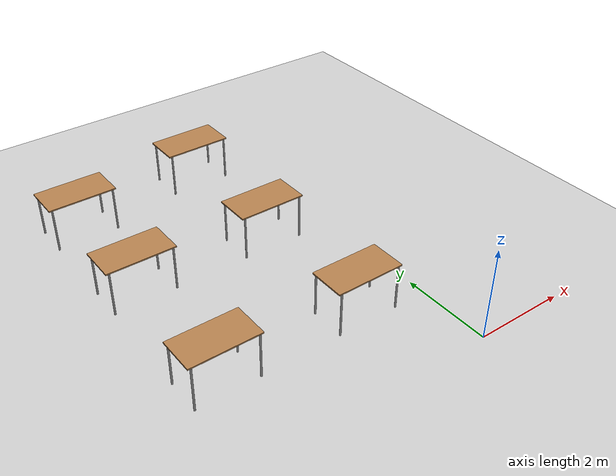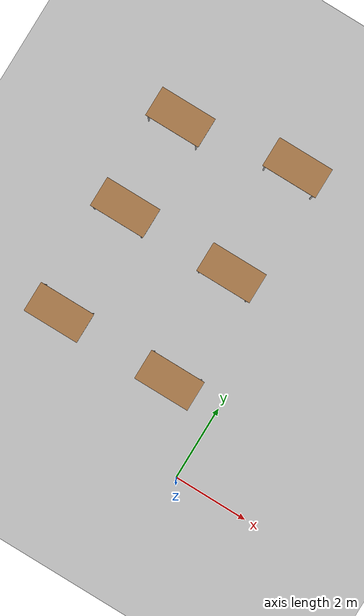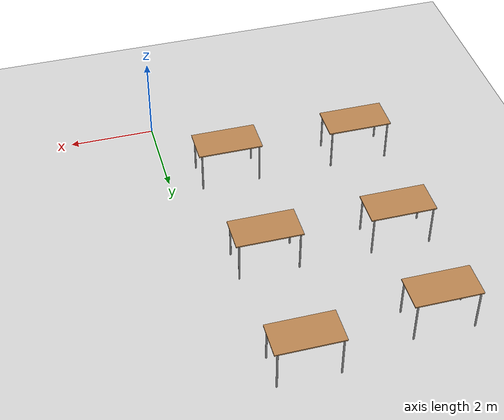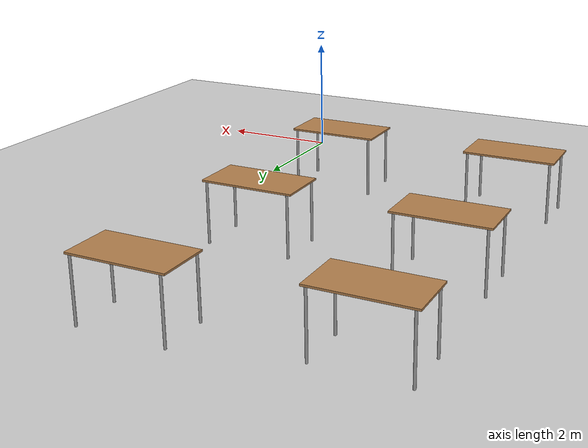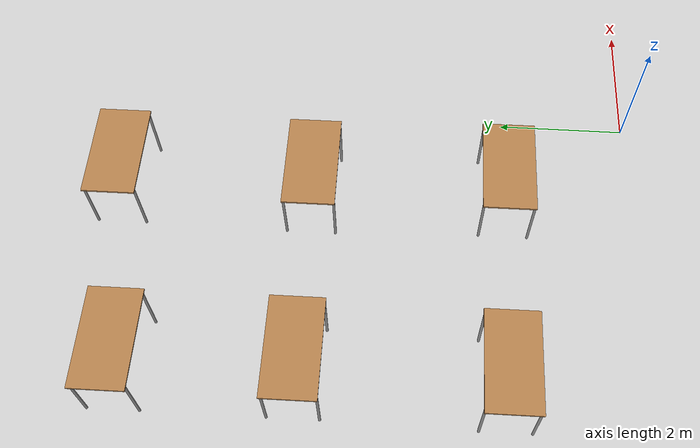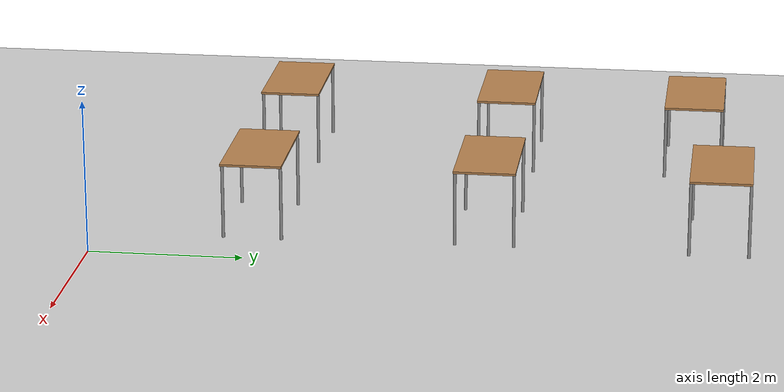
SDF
<sdf version="1.5">
 <world name="default">
  <model name="ground_plane">
   <static>1</static>
   <link name="link">
    <collision name="collision">
     <geometry><plane><normal>0 0 1</normal><size>100 100</size></plane></geometry>
     <surface><friction><ode><mu>100</mu><mu2>50</mu2></ode></friction></surface>
    </collision>
    <visual name="visual">
     <cast_shadows>0</cast_shadows>
     <geometry><plane><normal>0 0 1</normal><size>100 100</size></plane></geometry>
     <material>
      <script><uri>file://media/materials/scripts/gazebo.material</uri><name>Gazebo/Grey</name></script>
     </material>
    </visual>
   </link>
  </model>
  <model name="table">
   <static>1</static>
   <link name="link">
    <collision name="surface">
     <pose>0 0 1 0 -0 0</pose>
     <geometry><box><size>1.5 0.8 0.03</size></box></geometry>
     <surface><friction><ode><mu>0.6</mu><mu2>0.6</mu2></ode></friction></surface>
    </collision>
    <visual name="visual1">
     <pose>0 0 1 0 -0 0</pose>
     <geometry><box><size>1.5 0.8 0.03</size></box></geometry>
     <material>
      <script><uri>file://media/materials/scripts/gazebo.material</uri><name>Gazebo/Wood</name></script>
     </material>
    </visual>
    <collision name="front_left_leg">
     <pose>0.68 0.38 0.5 0 -0 0</pose>
     <geometry><cylinder><radius>0.02</radius><length>1</length></cylinder></geometry>
    </collision>
    <visual name="front_left_leg">
     <pose>0.68 0.38 0.5 0 -0 0</pose>
     <geometry><cylinder><radius>0.02</radius><length>1</length></cylinder></geometry>
     <material>
      <script><uri>file://media/materials/scripts/gazebo.material</uri><name>Gazebo/Grey</name></script>
     </material>
    </visual>
    <collision name="front_right_leg">
     <pose>0.68 -0.38 0.5 0 -0 0</pose>
     <geometry><cylinder><radius>0.02</radius><length>1</length></cylinder></geometry>
    </collision>
    <visual name="front_right_leg">
     <pose>0.68 -0.38 0.5 0 -0 0</pose>
     <geometry><cylinder><radius>0.02</radius><length>1</length></cylinder></geometry>
     <material>
      <script><uri>file://media/materials/scripts/gazebo.material</uri><name>Gazebo/Grey</name></script>
     </material>
    </visual>
    <collision name="back_right_leg">
     <pose>-0.68 -0.38 0.5 0 -0 0</pose>
     <geometry><cylinder><radius>0.02</radius><length>1</length></cylinder></geometry>
    </collision>
    <visual name="back_right_leg">
     <pose>-0.68 -0.38 0.5 0 -0 0</pose>
     <geometry><cylinder><radius>0.02</radius><length>1</length></cylinder></geometry>
     <material>
      <script><uri>file://media/materials/scripts/gazebo.material</uri><name>Gazebo/Grey</name></script>
     </material>
    </visual>
    <collision name="back_left_leg">
     <pose>-0.68 0.38 0.5 0 -0 0</pose>
     <geometry><cylinder><radius>0.02</radius><length>1</length></cylinder></geometry>
    </collision>
    <visual name="back_left_leg">
     <pose>-0.68 0.38 0.5 0 -0 0</pose>
     <geometry><cylinder><radius>0.02</radius><length>1</length></cylinder></geometry>
     <material>
      <script><uri>file://media/materials/scripts/gazebo.material</uri><name>Gazebo/Grey</name></script>
     </material>
    </visual>
   </link>
   <pose>-1.49734 5 0 0 -0 0</pose>
  </model>
  <model name="table_clone">
   <static>1</static>
   <link name="link">
    <collision name="surface">
     <pose>0 0 1 0 -0 0</pose>
     <geometry><box><size>1.5 0.8 0.03</size></box></geometry>
     <surface><friction><ode><mu>0.6</mu><mu2>0.6</mu2></ode></friction></surface>
    </collision>
    <visual name="visual1">
     <pose>0 0 1 0 -0 0</pose>
     <geometry><box><size>1.5 0.8 0.03</size></box></geometry>
     <material>
      <script><uri>file://media/materials/scripts/gazebo.material</uri><name>Gazebo/Wood</name></script>
     </material>
    </visual>
    <collision name="front_left_leg">
     <pose>0.68 0.38 0.5 0 -0 0</pose>
     <geometry><cylinder><radius>0.02</radius><length>1</length></cylinder></geometry>
    </collision>
    <visual name="front_left_leg">
     <pose>0.68 0.38 0.5 0 -0 0</pose>
     <geometry><cylinder><radius>0.02</radius><length>1</length></cylinder></geometry>
     <material>
      <script><uri>file://media/materials/scripts/gazebo.material</uri><name>Gazebo/Grey</name></script>
     </material>
    </visual>
    <collision name="front_right_leg">
     <pose>0.68 -0.38 0.5 0 -0 0</pose>
     <geometry><cylinder><radius>0.02</radius><length>1</length></cylinder></geometry>
    </collision>
    <visual name="front_right_leg">
     <pose>0.68 -0.38 0.5 0 -0 0</pose>
     <geometry><cylinder><radius>0.02</radius><length>1</length></cylinder></geometry>
     <material>
      <script><uri>file://media/materials/scripts/gazebo.material</uri><name>Gazebo/Grey</name></script>
     </material>
    </visual>
    <collision name="back_right_leg">
     <pose>-0.68 -0.38 0.5 0 -0 0</pose>
     <geometry><cylinder><radius>0.02</radius><length>1</length></cylinder></geometry>
    </collision>
    <visual name="back_right_leg">
     <pose>-0.68 -0.38 0.5 0 -0 0</pose>
     <geometry><cylinder><radius>0.02</radius><length>1</length></cylinder></geometry>
     <material>
      <script><uri>file://media/materials/scripts/gazebo.material</uri><name>Gazebo/Grey</name></script>
     </material>
    </visual>
    <collision name="back_left_leg">
     <pose>-0.68 0.38 0.5 0 -0 0</pose>
     <geometry><cylinder><radius>0.02</radius><length>1</length></cylinder></geometry>
    </collision>
    <visual name="back_left_leg">
     <pose>-0.68 0.38 0.5 0 -0 0</pose>
     <geometry><cylinder><radius>0.02</radius><length>1</length></cylinder></geometry>
     <material>
      <script><uri>file://media/materials/scripts/gazebo.material</uri><name>Gazebo/Grey</name></script>
     </material>
    </visual>
   </link>
   <pose>-1.46515 8 0 0 -0 0</pose>
  </model>
  <model name="table_clone_0">
   <static>1</static>
   <link name="link">
    <collision name="surface">
     <pose>0 0 1 0 -0 0</pose>
     <geometry><box><size>1.5 0.8 0.03</size></box></geometry>
     <surface><friction><ode><mu>0.6</mu><mu2>0.6</mu2></ode></friction></surface>
    </collision>
    <visual name="visual1">
     <pose>0 0 1 0 -0 0</pose>
     <geometry><box><size>1.5 0.8 0.03</size></box></geometry>
     <material>
      <script><uri>file://media/materials/scripts/gazebo.material</uri><name>Gazebo/Wood</name></script>
     </material>
    </visual>
    <collision name="front_left_leg">
     <pose>0.68 0.38 0.5 0 -0 0</pose>
     <geometry><cylinder><radius>0.02</radius><length>1</length></cylinder></geometry>
    </collision>
    <visual name="front_left_leg">
     <pose>0.68 0.38 0.5 0 -0 0</pose>
     <geometry><cylinder><radius>0.02</radius><length>1</length></cylinder></geometry>
     <material>
      <script><uri>file://media/materials/scripts/gazebo.material</uri><name>Gazebo/Grey</name></script>
     </material>
    </visual>
    <collision name="front_right_leg">
     <pose>0.68 -0.38 0.5 0 -0 0</pose>
     <geometry><cylinder><radius>0.02</radius><length>1</length></cylinder></geometry>
    </collision>
    <visual name="front_right_leg">
     <pose>0.68 -0.38 0.5 0 -0 0</pose>
     <geometry><cylinder><radius>0.02</radius><length>1</length></cylinder></geometry>
     <material>
      <script><uri>file://media/materials/scripts/gazebo.material</uri><name>Gazebo/Grey</name></script>
     </material>
    </visual>
    <collision name="back_right_leg">
     <pose>-0.68 -0.38 0.5 0 -0 0</pose>
     <geometry><cylinder><radius>0.02</radius><length>1</length></cylinder></geometry>
    </collision>
    <visual name="back_right_leg">
     <pose>-0.68 -0.38 0.5 0 -0 0</pose>
     <geometry><cylinder><radius>0.02</radius><length>1</length></cylinder></geometry>
     <material>
      <script><uri>file://media/materials/scripts/gazebo.material</uri><name>Gazebo/Grey</name></script>
     </material>
    </visual>
    <collision name="back_left_leg">
     <pose>-0.68 0.38 0.5 0 -0 0</pose>
     <geometry><cylinder><radius>0.02</radius><length>1</length></cylinder></geometry>
    </collision>
    <visual name="back_left_leg">
     <pose>-0.68 0.38 0.5 0 -0 0</pose>
     <geometry><cylinder><radius>0.02</radius><length>1</length></cylinder></geometry>
     <material>
      <script><uri>file://media/materials/scripts/gazebo.material</uri><name>Gazebo/Grey</name></script>
     </material>
    </visual>
   </link>
   <pose>-1.41632 2 0 0 -0 0</pose>
  </model>
  <model name="table_clone_1">
   <static>1</static>
   <link name="link">
    <collision name="surface">
     <pose>0 0 1 0 -0 0</pose>
     <geometry><box><size>1.5 0.8 0.03</size></box></geometry>
     <surface><friction><ode><mu>0.6</mu><mu2>0.6</mu2></ode></friction></surface>
    </collision>
    <visual name="visual1">
     <pose>0 0 1 0 -0 0</pose>
     <geometry><box><size>1.5 0.8 0.03</size></box></geometry>
     <material>
      <script><uri>file://media/materials/scripts/gazebo.material</uri><name>Gazebo/Wood</name></script>
     </material>
    </visual>
    <collision name="front_left_leg">
     <pose>0.68 0.38 0.5 0 -0 0</pose>
     <geometry><cylinder><radius>0.02</radius><length>1</length></cylinder></geometry>
    </collision>
    <visual name="front_left_leg">
     <pose>0.68 0.38 0.5 0 -0 0</pose>
     <geometry><cylinder><radius>0.02</radius><length>1</length></cylinder></geometry>
     <material>
      <script><uri>file://media/materials/scripts/gazebo.material</uri><name>Gazebo/Grey</name></script>
     </material>
    </visual>
    <collision name="front_right_leg">
     <pose>0.68 -0.38 0.5 0 -0 0</pose>
     <geometry><cylinder><radius>0.02</radius><length>1</length></cylinder></geometry>
    </collision>
    <visual name="front_right_leg">
     <pose>0.68 -0.38 0.5 0 -0 0</pose>
     <geometry><cylinder><radius>0.02</radius><length>1</length></cylinder></geometry>
     <material>
      <script><uri>file://media/materials/scripts/gazebo.material</uri><name>Gazebo/Grey</name></script>
     </material>
    </visual>
    <collision name="back_right_leg">
     <pose>-0.68 -0.38 0.5 0 -0 0</pose>
     <geometry><cylinder><radius>0.02</radius><length>1</length></cylinder></geometry>
    </collision>
    <visual name="back_right_leg">
     <pose>-0.68 -0.38 0.5 0 -0 0</pose>
     <geometry><cylinder><radius>0.02</radius><length>1</length></cylinder></geometry>
     <material>
      <script><uri>file://media/materials/scripts/gazebo.material</uri><name>Gazebo/Grey</name></script>
     </material>
    </visual>
    <collision name="back_left_leg">
     <pose>-0.68 0.38 0.5 0 -0 0</pose>
     <geometry><cylinder><radius>0.02</radius><length>1</length></cylinder></geometry>
    </collision>
    <visual name="back_left_leg">
     <pose>-0.68 0.38 0.5 0 -0 0</pose>
     <geometry><cylinder><radius>0.02</radius><length>1</length></cylinder></geometry>
     <material>
      <script><uri>file://media/materials/scripts/gazebo.material</uri><name>Gazebo/Grey</name></script>
     </material>
    </visual>
   </link>
   <pose>-4.55012 2 0 0 -0 0</pose>
  </model>
  <model name="table_clone_2">
   <static>1</static>
   <link name="link">
    <collision name="surface">
     <pose>0 0 1 0 -0 0</pose>
     <geometry><box><size>1.5 0.8 0.03</size></box></geometry>
     <surface><friction><ode><mu>0.6</mu><mu2>0.6</mu2></ode></friction></surface>
    </collision>
    <visual name="visual1">
     <pose>0 0 1 0 -0 0</pose>
     <geometry><box><size>1.5 0.8 0.03</size></box></geometry>
     <material>
      <script><uri>file://media/materials/scripts/gazebo.material</uri><name>Gazebo/Wood</name></script>
     </material>
    </visual>
    <collision name="front_left_leg">
     <pose>0.68 0.38 0.5 0 -0 0</pose>
     <geometry><cylinder><radius>0.02</radius><length>1</length></cylinder></geometry>
    </collision>
    <visual name="front_left_leg">
     <pose>0.68 0.38 0.5 0 -0 0</pose>
     <geometry><cylinder><radius>0.02</radius><length>1</length></cylinder></geometry>
     <material>
      <script><uri>file://media/materials/scripts/gazebo.material</uri><name>Gazebo/Grey</name></script>
     </material>
    </visual>
    <collision name="front_right_leg">
     <pose>0.68 -0.38 0.5 0 -0 0</pose>
     <geometry><cylinder><radius>0.02</radius><length>1</length></cylinder></geometry>
    </collision>
    <visual name="front_right_leg">
     <pose>0.68 -0.38 0.5 0 -0 0</pose>
     <geometry><cylinder><radius>0.02</radius><length>1</length></cylinder></geometry>
     <material>
      <script><uri>file://media/materials/scripts/gazebo.material</uri><name>Gazebo/Grey</name></script>
     </material>
    </visual>
    <collision name="back_right_leg">
     <pose>-0.68 -0.38 0.5 0 -0 0</pose>
     <geometry><cylinder><radius>0.02</radius><length>1</length></cylinder></geometry>
    </collision>
    <visual name="back_right_leg">
     <pose>-0.68 -0.38 0.5 0 -0 0</pose>
     <geometry><cylinder><radius>0.02</radius><length>1</length></cylinder></geometry>
     <material>
      <script><uri>file://media/materials/scripts/gazebo.material</uri><name>Gazebo/Grey</name></script>
     </material>
    </visual>
    <collision name="back_left_leg">
     <pose>-0.68 0.38 0.5 0 -0 0</pose>
     <geometry><cylinder><radius>0.02</radius><length>1</length></cylinder></geometry>
    </collision>
    <visual name="back_left_leg">
     <pose>-0.68 0.38 0.5 0 -0 0</pose>
     <geometry><cylinder><radius>0.02</radius><length>1</length></cylinder></geometry>
     <material>
      <script><uri>file://media/materials/scripts/gazebo.material</uri><name>Gazebo/Grey</name></script>
     </material>
    </visual>
   </link>
   <pose>-4.51303 5 0 0 -0 0</pose>
  </model>
  <model name="table_clone_3">
   <static>1</static>
   <link name="link">
    <collision name="surface">
     <pose>0 0 1 0 -0 0</pose>
     <geometry><box><size>1.5 0.8 0.03</size></box></geometry>
     <surface><friction><ode><mu>0.6</mu><mu2>0.6</mu2></ode></friction></surface>
    </collision>
    <visual name="visual1">
     <pose>0 0 1 0 -0 0</pose>
     <geometry><box><size>1.5 0.8 0.03</size></box></geometry>
     <material>
      <script><uri>file://media/materials/scripts/gazebo.material</uri><name>Gazebo/Wood</name></script>
     </material>
    </visual>
    <collision name="front_left_leg">
     <pose>0.68 0.38 0.5 0 -0 0</pose>
     <geometry><cylinder><radius>0.02</radius><length>1</length></cylinder></geometry>
    </collision>
    <visual name="front_left_leg">
     <pose>0.68 0.38 0.5 0 -0 0</pose>
     <geometry><cylinder><radius>0.02</radius><length>1</length></cylinder></geometry>
     <material>
      <script><uri>file://media/materials/scripts/gazebo.material</uri><name>Gazebo/Grey</name></script>
     </material>
    </visual>
    <collision name="front_right_leg">
     <pose>0.68 -0.38 0.5 0 -0 0</pose>
     <geometry><cylinder><radius>0.02</radius><length>1</length></cylinder></geometry>
    </collision>
    <visual name="front_right_leg">
     <pose>0.68 -0.38 0.5 0 -0 0</pose>
     <geometry><cylinder><radius>0.02</radius><length>1</length></cylinder></geometry>
     <material>
      <script><uri>file://media/materials/scripts/gazebo.material</uri><name>Gazebo/Grey</name></script>
     </material>
    </visual>
    <collision name="back_right_leg">
     <pose>-0.68 -0.38 0.5 0 -0 0</pose>
     <geometry><cylinder><radius>0.02</radius><length>1</length></cylinder></geometry>
    </collision>
    <visual name="back_right_leg">
     <pose>-0.68 -0.38 0.5 0 -0 0</pose>
     <geometry><cylinder><radius>0.02</radius><length>1</length></cylinder></geometry>
     <material>
      <script><uri>file://media/materials/scripts/gazebo.material</uri><name>Gazebo/Grey</name></script>
     </material>
    </visual>
    <collision name="back_left_leg">
     <pose>-0.68 0.38 0.5 0 -0 0</pose>
     <geometry><cylinder><radius>0.02</radius><length>1</length></cylinder></geometry>
    </collision>
    <visual name="back_left_leg">
     <pose>-0.68 0.38 0.5 0 -0 0</pose>
     <geometry><cylinder><radius>0.02</radius><length>1</length></cylinder></geometry>
     <material>
      <script><uri>file://media/materials/scripts/gazebo.material</uri><name>Gazebo/Grey</name></script>
     </material>
    </visual>
   </link>
   <pose>-4.51786 7.56232 0 0 -0 0</pose>
  </model>
  <model name="actor_clone"><pose>-13 3 0 0 -0 0</pose></model>
 </world>
</sdf>
